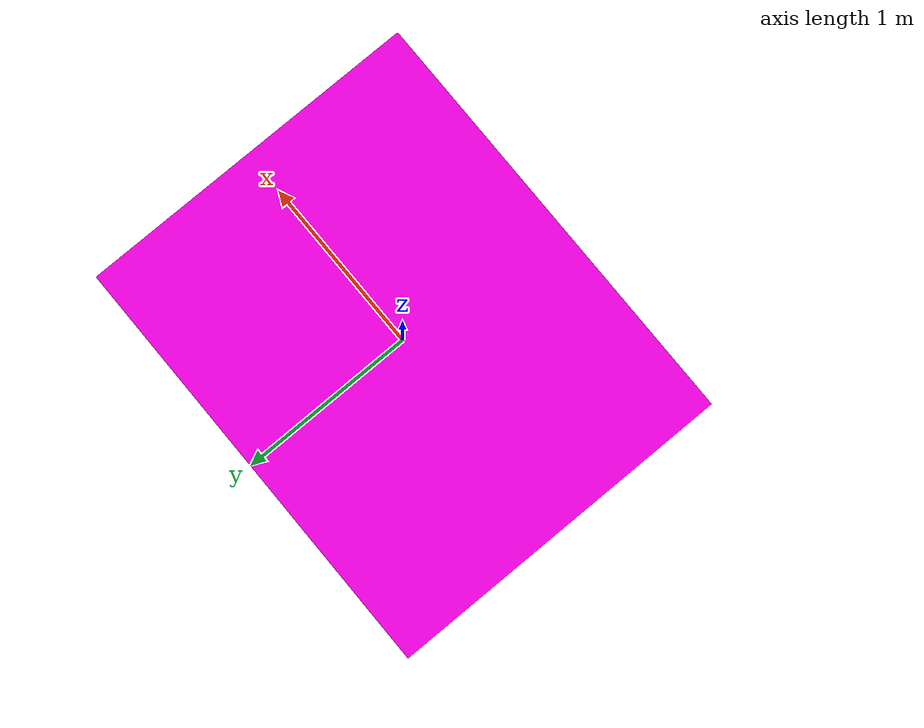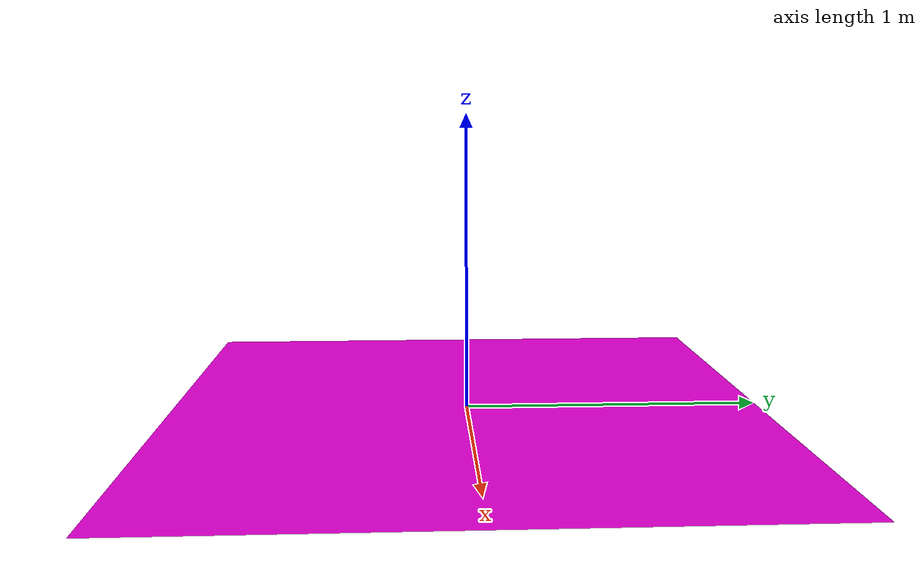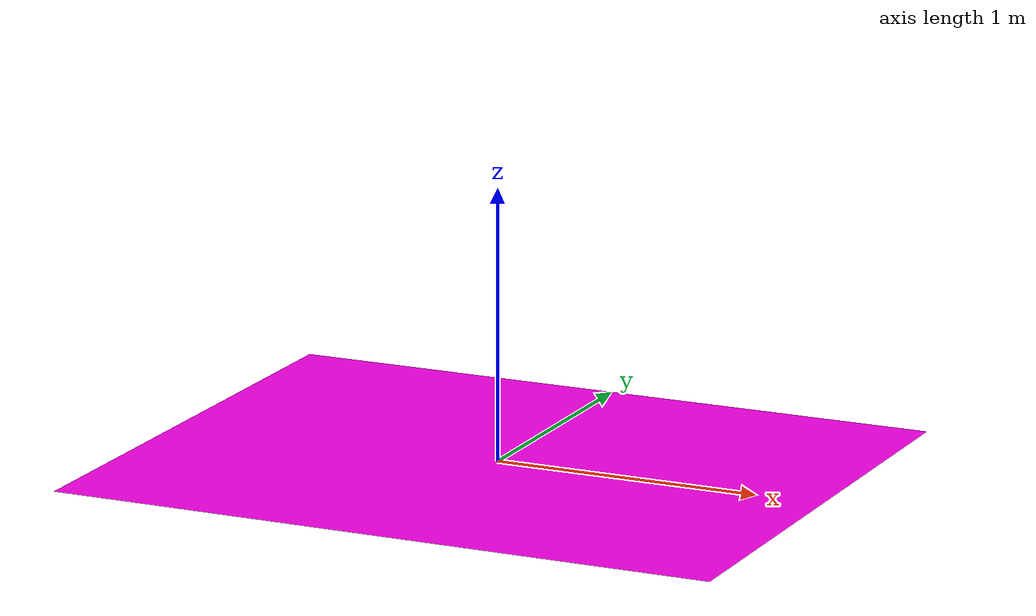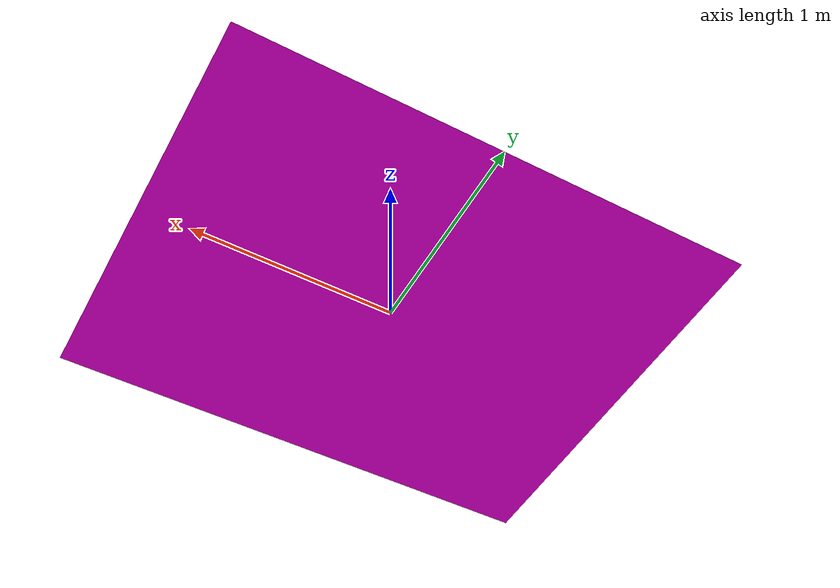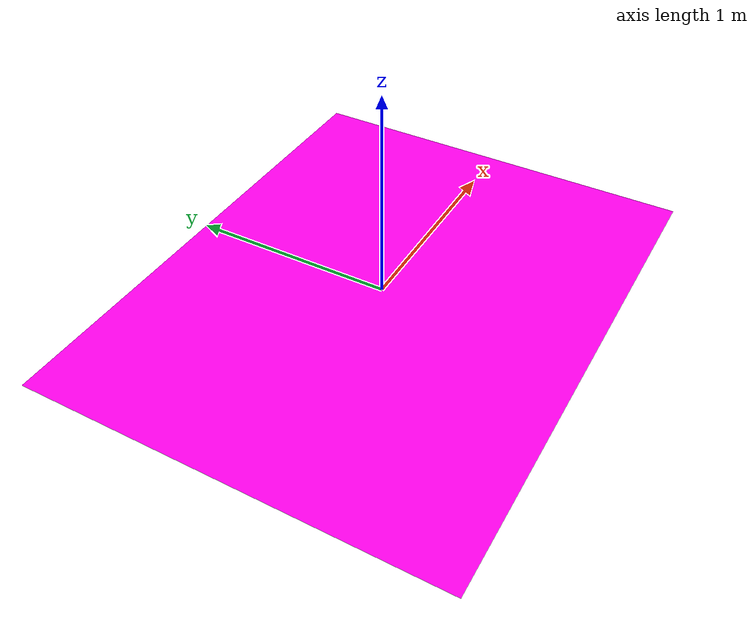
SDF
<?xml version="1.0"?>
<sdf version="1.10">
    <model name='start_point_mark'>
        <link name='box_link'>
            <visual name='box_visual'>
                <geometry>
                    <box>
                        <size>2.5 2 0</size>
                    </box>
                </geometry>
                <material>
                    <ambient>1 0 0.929 1</ambient>
                    <diffuse>1 0 0.929 1</diffuse>
                    <specular>1 1 1 1</specular>
                </material>
            </visual>
            <enable_wind>false</enable_wind>
        </link>
        <static>true</static>
        <self_collide>false</self_collide>
    </model>
</sdf>
